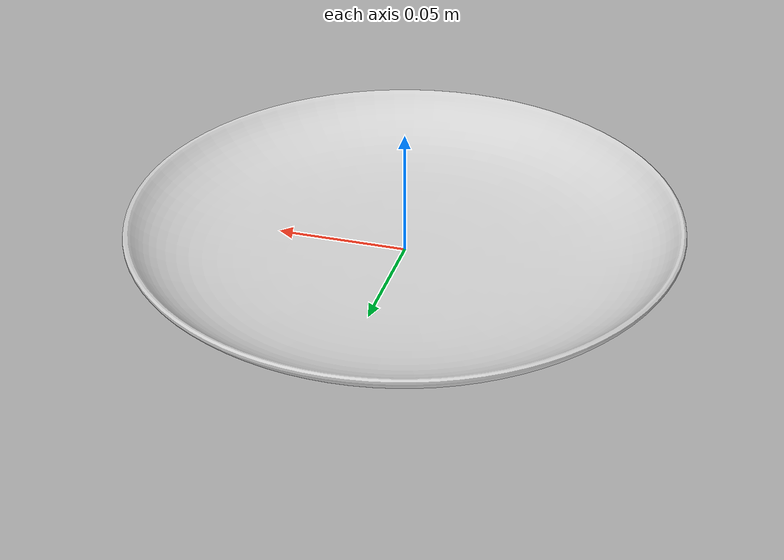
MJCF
<?xml version="1.0" ?>
<mujoco model="medium_plate">
	<compiler meshdir="medium_plate/meshes" texturedir="medium_plate/textures" angle="radian" autolimits="true" balanceinertia="true" boundmass="0.000001" boundinertia="0.000001"/>
	<default>
		<default class="visual">
			<geom contype="0" conaffinity="0"/>
		</default>
		<default class="collision">
			<geom rgba="1.0 0.0 0.0 0.0"/>
		</default>
	</default>
	<asset>
		<mesh name="PlateMediumSize" file="stl/PlateMediumSize.stl" scale="1.0 1.0 1.0"/>
		<mesh name="PlateMediumSize_001" file="stl/PlateMediumSize_001.stl" scale="1.0 1.0 1.0"/>
		<mesh name="PlateMediumSize_002" file="stl/PlateMediumSize_002.stl" scale="1.0 1.0 1.0"/>
		<mesh name="PlateMediumSize_003" file="stl/PlateMediumSize_003.stl" scale="1.0 1.0 1.0"/>
		<mesh name="PlateMediumSize_004" file="stl/PlateMediumSize_004.stl" scale="1.0 1.0 1.0"/>
		<mesh name="PlateMediumSize_005" file="stl/PlateMediumSize_005.stl" scale="1.0 1.0 1.0"/>
		<mesh name="PlateMediumSize_006" file="stl/PlateMediumSize_006.stl" scale="1.0 1.0 1.0"/>
		<mesh name="PlateMediumSize_007" file="stl/PlateMediumSize_007.stl" scale="1.0 1.0 1.0"/>
		<mesh name="PlateMediumSize_008" file="stl/PlateMediumSize_008.stl" scale="1.0 1.0 1.0"/>
		<mesh name="PlateMediumSize_009" file="stl/PlateMediumSize_009.stl" scale="1.0 1.0 1.0"/>
		<mesh name="PlateMediumSize_010" file="stl/PlateMediumSize_010.stl" scale="1.0 1.0 1.0"/>
		<mesh name="PlateMediumSize_011" file="stl/PlateMediumSize_011.stl" scale="1.0 1.0 1.0"/>
		<mesh name="PlateMediumSize_012" file="stl/PlateMediumSize_012.stl" scale="1.0 1.0 1.0"/>
		<mesh name="PlateMediumSize_013" file="stl/PlateMediumSize_013.stl" scale="1.0 1.0 1.0"/>
		<mesh name="PlateMediumSize_014" file="stl/PlateMediumSize_014.stl" scale="1.0 1.0 1.0"/>
		<mesh name="PlateMediumSize_015" file="stl/PlateMediumSize_015.stl" scale="1.0 1.0 1.0"/>
		<mesh name="PlateMediumSize_016" file="stl/PlateMediumSize_016.stl" scale="1.0 1.0 1.0"/>
		<mesh name="PlateMediumSize_017" file="stl/PlateMediumSize_017.stl" scale="1.0 1.0 1.0"/>
		<mesh name="PlateMediumSize_018" file="stl/PlateMediumSize_018.stl" scale="1.0 1.0 1.0"/>
		<mesh name="PlateMediumSize_019" file="stl/PlateMediumSize_019.stl" scale="1.0 1.0 1.0"/>
		<mesh name="PlateMediumSize_020" file="stl/PlateMediumSize_020.stl" scale="1.0 1.0 1.0"/>
		<material name="M_PlateMediumSize" rgba="0.8098999857902527 0.8098999857902527 0.8098999857902527 1.0" emission="0.0"/>
	</asset>
	<worldbody>
		<body name="medium_plate" pos="0.0 0.0 0.0" quat="1.0 0.0 0.0 0.0">
			<inertial mass="0.31627848744392395" pos="-2.3997455134150414e-09 -1.3384330976862202e-08 -0.0028866431675851345" quat="0.9999326467514038 -9.101980680270572e-08 -6.34195959636763e-11 -0.01160433143377304" diaginertia="0.0009419583366252482 0.0009419606649316847 0.0018639643676578999"/>
			<geom name="PlateMediumSize" type="mesh" pos="0.0 0.0 0.0" quat="1.0 0.0 0.0 0.0" mesh="PlateMediumSize" material="M_PlateMediumSize" class="visual"/>
			<geom name="PlateMediumSize_001" type="mesh" pos="0.0 0.0 0.0" quat="1.0 0.0 0.0 0.0" mesh="PlateMediumSize_001" class="collision"/>
			<geom name="PlateMediumSize_002" type="mesh" pos="0.0 0.0 0.0" quat="1.0 0.0 0.0 0.0" mesh="PlateMediumSize_002" class="collision"/>
			<geom name="PlateMediumSize_003" type="mesh" pos="0.0 0.0 0.0" quat="1.0 0.0 0.0 0.0" mesh="PlateMediumSize_003" class="collision"/>
			<geom name="PlateMediumSize_004" type="mesh" pos="0.0 0.0 0.0" quat="1.0 0.0 0.0 0.0" mesh="PlateMediumSize_004" class="collision"/>
			<geom name="PlateMediumSize_005" type="mesh" pos="0.0 0.0 0.0" quat="1.0 0.0 0.0 0.0" mesh="PlateMediumSize_005" class="collision"/>
			<geom name="PlateMediumSize_006" type="mesh" pos="0.0 0.0 0.0" quat="1.0 0.0 0.0 0.0" mesh="PlateMediumSize_006" class="collision"/>
			<geom name="PlateMediumSize_007" type="mesh" pos="0.0 0.0 0.0" quat="1.0 0.0 0.0 0.0" mesh="PlateMediumSize_007" class="collision"/>
			<geom name="PlateMediumSize_008" type="mesh" pos="0.0 0.0 0.0" quat="1.0 0.0 0.0 0.0" mesh="PlateMediumSize_008" class="collision"/>
			<geom name="PlateMediumSize_009" type="mesh" pos="0.0 0.0 0.0" quat="1.0 0.0 0.0 0.0" mesh="PlateMediumSize_009" class="collision"/>
			<geom name="PlateMediumSize_010" type="mesh" pos="0.0 0.0 0.0" quat="1.0 0.0 0.0 0.0" mesh="PlateMediumSize_010" class="collision"/>
			<geom name="PlateMediumSize_011" type="mesh" pos="0.0 0.0 0.0" quat="1.0 0.0 0.0 0.0" mesh="PlateMediumSize_011" class="collision"/>
			<geom name="PlateMediumSize_012" type="mesh" pos="0.0 0.0 0.0" quat="1.0 0.0 0.0 0.0" mesh="PlateMediumSize_012" class="collision"/>
			<geom name="PlateMediumSize_013" type="mesh" pos="0.0 0.0 0.0" quat="1.0 0.0 0.0 0.0" mesh="PlateMediumSize_013" class="collision"/>
			<geom name="PlateMediumSize_014" type="mesh" pos="0.0 0.0 0.0" quat="1.0 0.0 0.0 0.0" mesh="PlateMediumSize_014" class="collision"/>
			<geom name="PlateMediumSize_015" type="mesh" pos="0.0 0.0 0.0" quat="1.0 0.0 0.0 0.0" mesh="PlateMediumSize_015" class="collision"/>
			<geom name="PlateMediumSize_016" type="mesh" pos="0.0 0.0 0.0" quat="1.0 0.0 0.0 0.0" mesh="PlateMediumSize_016" class="collision"/>
			<geom name="PlateMediumSize_017" type="mesh" pos="0.0 0.0 0.0" quat="1.0 0.0 0.0 0.0" mesh="PlateMediumSize_017" class="collision"/>
			<geom name="PlateMediumSize_018" type="mesh" pos="0.0 0.0 0.0" quat="1.0 0.0 0.0 0.0" mesh="PlateMediumSize_018" class="collision"/>
			<geom name="PlateMediumSize_019" type="mesh" pos="0.0 0.0 0.0" quat="1.0 0.0 0.0 0.0" mesh="PlateMediumSize_019" class="collision"/>
			<geom name="PlateMediumSize_020" type="mesh" pos="0.0 0.0 0.0" quat="1.0 0.0 0.0 0.0" mesh="PlateMediumSize_020" class="collision"/>
		</body>
	</worldbody>
	<equality/>
</mujoco>
